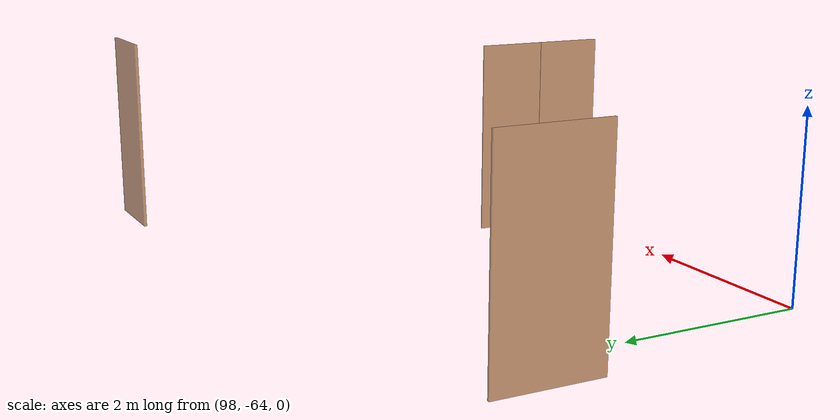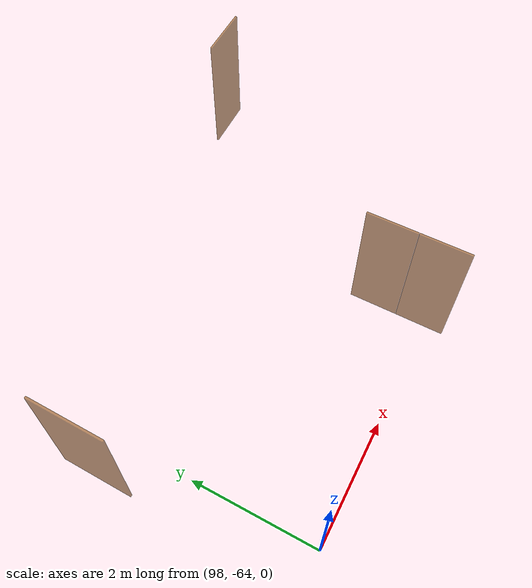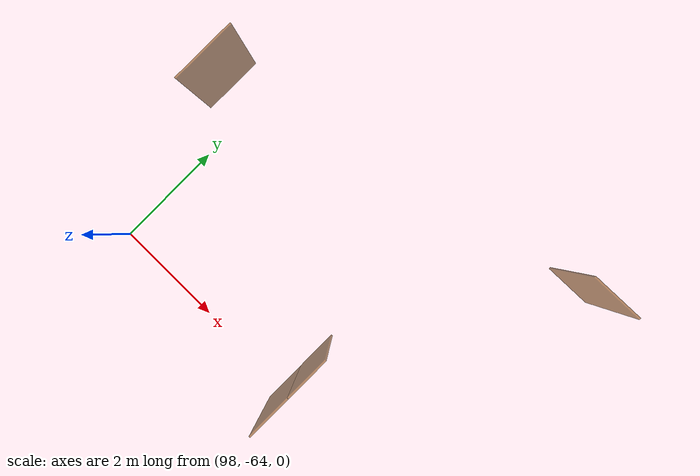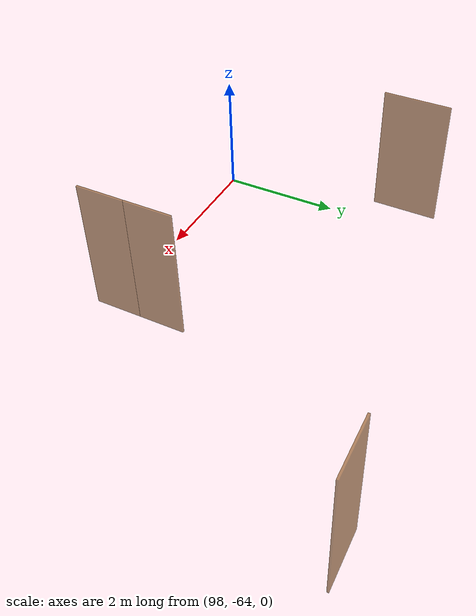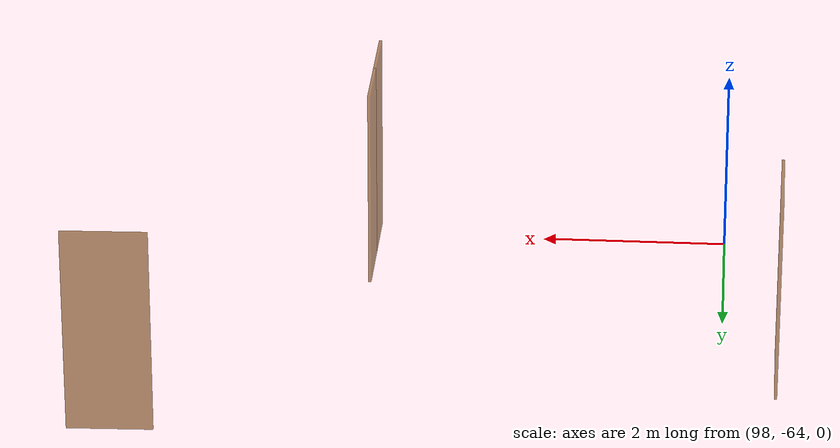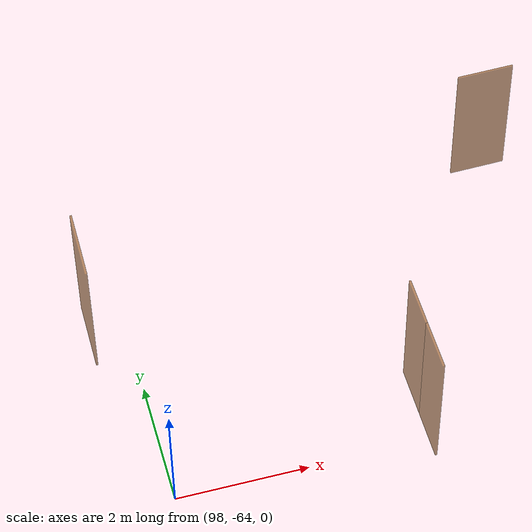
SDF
<sdf version="1.7">
 <world name="sim_world">
  <model name="puerta125">
   <pose>97.43174617866951 -60.814312581254526 0.0 0 0 -1.5801746288038012</pose>
   <link name="right">
    <pose>0 0 1.11 0 0 0</pose>
    <visual name="right_visual">
     <geometry><box><size>1.1295281473367405 0.03 2.2</size></box></geometry>
     <material>
      <ambient>0.5 0.25 0 0.6</ambient>
      <diffuse>0.5 0.25 0 0.6</diffuse>
      <pbr><metal><metalness>0.0</metalness></metal></pbr>
     </material>
    </visual>
    <collision name="right_collision">
     <geometry><box><size>1.1295281473367405 0.03 2.2</size></box></geometry>
     <surface><contact><collide_bitmask>0x02</collide_bitmask></contact></surface>
    </collision>
    <inertial>
     <mass>50.0</mass>
     <inertia><ixx>20.17041666666667</ixx><iyy>25.48264098177488</iyy><izz>5.319724315108205</izz></inertia>
    </inertial>
   </link>
   <joint name="right_joint" type="revolute">
    <parent>world</parent>
    <child>right</child>
    <axis><xyz>0 0 -1</xyz><limit><lower>0</lower><upper>1.57</upper></limit></axis>
    <pose>0.5697640736683702 0 0 0 0 0</pose>
   </joint>
   <plugin name="register_component" filename="libregister_component.so">
    <component name="Door">
     <v_max_door>0.5</v_max_door>
     <a_max_door>0.3</a_max_door>
     <a_nom_door>0.15</a_nom_door>
     <dx_min_door>0.01</dx_min_door>
     <f_max_door>500.0</f_max_door>
     <ros_interface>true</ros_interface>
     <door name="puerta125" type="SwingDoor" left_joint_name="empty_joint" right_joint_name="right_joint"/>
    </component>
   </plugin>
  </model>
  <model name="puerta126">
   <pose>101.83865633901182 -63.51941063366975 0.0 0 0 -1.5707963267948966</pose>
   <link name="right">
    <pose>0.39199929316430904 0 1.11 0 0 0</pose>
    <visual name="right_visual">
     <geometry><box><size>0.7739985863286181 0.03 2.2</size></box></geometry>
     <material>
      <ambient>0.5 0.25 0 0.6</ambient>
      <diffuse>0.5 0.25 0 0.6</diffuse>
      <pbr><metal><metalness>0.0</metalness></metal></pbr>
     </material>
    </visual>
    <collision name="right_collision">
     <geometry><box><size>0.7739985863286181 0.03 2.2</size></box></geometry>
     <surface><contact><collide_bitmask>0x02</collide_bitmask></contact></surface>
    </collision>
    <inertial>
     <mass>50.0</mass>
     <inertia><ixx>20.17041666666667</ixx><iyy>22.662807548494584</iyy><izz>2.4998908818279135</izz></inertia>
    </inertial>
   </link>
   <joint name="right_joint" type="revolute">
    <parent>world</parent>
    <child>right</child>
    <axis><xyz>0 0 1</xyz><limit><lower>0</lower><upper>1.57</upper></limit></axis>
    <pose>0.39199929316430904 0 0 0 0 0</pose>
   </joint>
   <link name="left">
    <pose>-0.39199929316430904 0 1.11 0 0 0</pose>
    <visual name="left_visual">
     <geometry><box><size>0.7739985863286181 0.03 2.2</size></box></geometry>
     <material>
      <ambient>0.5 0.25 0 0.6</ambient>
      <diffuse>0.5 0.25 0 0.6</diffuse>
      <pbr><metal><metalness>0.0</metalness></metal></pbr>
     </material>
    </visual>
    <collision name="left_collision">
     <geometry><box><size>0.7739985863286181 0.03 2.2</size></box></geometry>
     <surface><contact><collide_bitmask>0x02</collide_bitmask></contact></surface>
    </collision>
    <inertial>
     <mass>50.0</mass>
     <inertia><ixx>20.17041666666667</ixx><iyy>22.662807548494584</iyy><izz>2.4998908818279135</izz></inertia>
    </inertial>
   </link>
   <joint name="left_joint" type="revolute">
    <parent>world</parent>
    <child>left</child>
    <axis><xyz>0 0 1</xyz><limit><lower>-1.57</lower><upper>0</upper></limit></axis>
    <pose>-0.39199929316430904 0 0 0 0 0</pose>
   </joint>
   <plugin name="register_component" filename="libregister_component.so">
    <component name="Door">
     <v_max_door>0.5</v_max_door>
     <a_max_door>0.3</a_max_door>
     <a_nom_door>0.15</a_nom_door>
     <dx_min_door>0.01</dx_min_door>
     <f_max_door>500.0</f_max_door>
     <ros_interface>true</ros_interface>
     <door name="puerta126" type="DoubleSwingDoor" left_joint_name="left_joint" right_joint_name="right_joint"/>
    </component>
   </plugin>
  </model>
  <model name="puerta127">
   <pose>104.19393383513054 -59.12922471063912 0.0 0 0 0.030278170194955826</pose>
   <link name="right">
    <pose>0 0 1.11 0 0 0</pose>
    <visual name="right_visual">
     <geometry><box><size>0.8891873803086136 0.03 2.2</size></box></geometry>
     <material>
      <ambient>0.5 0.25 0 0.6</ambient>
      <diffuse>0.5 0.25 0 0.6</diffuse>
      <pbr><metal><metalness>0.0</metalness></metal></pbr>
     </material>
    </visual>
    <collision name="right_collision">
     <geometry><box><size>0.8891873803086136 0.03 2.2</size></box></geometry>
     <surface><contact><collide_bitmask>0x02</collide_bitmask></contact></surface>
    </collision>
    <inertial>
     <mass>50.0</mass>
     <inertia><ixx>20.17041666666667</ixx><iyy>23.461059155417068</iyy><izz>3.2981424887503956</izz></inertia>
    </inertial>
   </link>
   <joint name="right_joint" type="revolute">
    <parent>world</parent>
    <child>right</child>
    <axis><xyz>0 0 -1</xyz><limit><lower>0</lower><upper>1.57</upper></limit></axis>
    <pose>0.4495936901543068 0 0 0 0 0</pose>
   </joint>
   <plugin name="register_component" filename="libregister_component.so">
    <component name="Door">
     <v_max_door>0.5</v_max_door>
     <a_max_door>0.3</a_max_door>
     <a_nom_door>0.15</a_nom_door>
     <dx_min_door>0.01</dx_min_door>
     <f_max_door>500.0</f_max_door>
     <ros_interface>true</ros_interface>
     <door name="puerta127" type="SwingDoor" left_joint_name="empty_joint" right_joint_name="right_joint"/>
    </component>
   </plugin>
  </model>
 </world>
</sdf>
